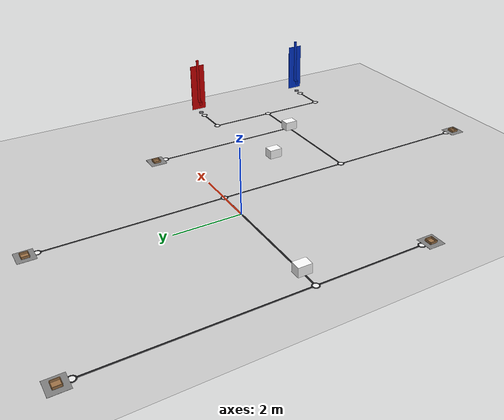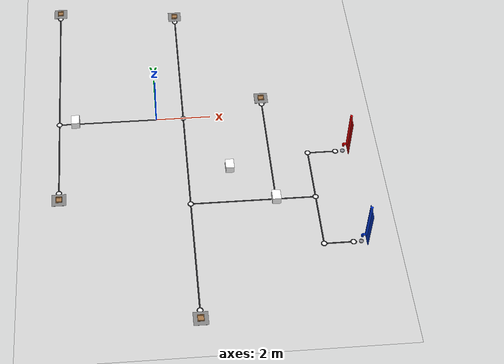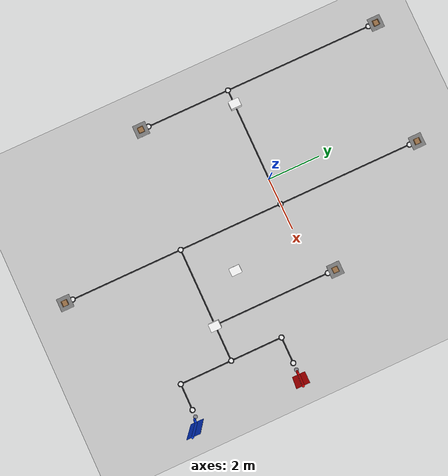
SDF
<sdf version="1.8">
 <world name="default">
  <physics name="2ms" type="ignored">
   <max_step_size>0.002</max_step_size>
   <real_time_factor>1.0</real_time_factor>
  </physics>
  <plugin filename="gz-sim-physics-system" name="gz::sim::systems::Physics"/>
  <plugin filename="gz-sim-user-commands-system" name="gz::sim::systems::UserCommands"/>
  <plugin filename="gz-sim-scene-broadcaster-system" name="gz::sim::systems::SceneBroadcaster"/>
  <plugin filename="gz-sim-sensors-system" name="gz::sim::systems::Sensors">
   <render_engine>ogre2</render_engine>
  </plugin>
  <plugin filename="gz-sim-imu-system" name="gz::sim::systems::Imu"/>
  <plugin filename="gz-sim-contact-system" name="gz::sim::systems::Contact"/>
  <plugin filename="libgz_link_attacher.so" name="gz_link_attacher::LinkAttacher">
   <robot_model_name>myagv_mecharm</robot_model_name>
   <gripper_link_name>gripper_left1</gripper_link_name>
  </plugin>
  <scene><grid>false</grid><shadows>false</shadows></scene>
  <light type="directional" name="sun">
   <cast_shadows>false</cast_shadows>
   <pose>0 0 18 0 0 0</pose>
   <diffuse>0.5 0.5 0.5 1</diffuse>
   <specular>0.2 0.2 0.2 1</specular>
   <attenuation>
    <range>80</range>
    <constant>0.01</constant>
    <linear>0.01</linear>
    <quadratic>0.001</quadratic>
   </attenuation>
   <direction>0.1 0.1 -1</direction>
  </light>
  <model name="ground_plane">
   <static>true</static>
   <link name="link">
    <collision name="collision"><geometry><plane><normal>0 0 1</normal></plane></geometry></collision>
    <visual name="visual">
     <geometry><plane><normal>0 0 1</normal><size>100 100</size></plane></geometry>
     <material>
      <ambient>0.8 0.8 0.8 1</ambient>
      <diffuse>0.8 0.8 0.8 1</diffuse>
      <specular>0.8 0.8 0.8 1</specular>
     </material>
    </visual>
   </link>
  </model>
  <model name="guide_tape">
   <static>true</static>
   <link name="link">
    <visual name="tape_0">
     <pose>5.905 -2.000 0.001 0 0 3.1416</pose>
     <geometry><box><size>1.011 0.05 0.002</size></box></geometry>
     <material><ambient>0.12 0.12 0.13 1</ambient><diffuse>0.12 0.12 0.13 1</diffuse></material>
    </visual>
    <visual name="tape_1">
     <pose>5.400 -3.000 0.001 0 0 -1.5708</pose>
     <geometry><box><size>2.000 0.05 0.002</size></box></geometry>
     <material><ambient>0.12 0.12 0.13 1</ambient><diffuse>0.12 0.12 0.13 1</diffuse></material>
    </visual>
    <visual name="tape_2">
     <pose>5.400 -5.000 0.001 0 0 -1.5708</pose>
     <geometry><box><size>2.000 0.05 0.002</size></box></geometry>
     <material><ambient>0.12 0.12 0.13 1</ambient><diffuse>0.12 0.12 0.13 1</diffuse></material>
    </visual>
    <visual name="tape_3">
     <pose>5.905 -6.000 0.001 0 0 0.0000</pose>
     <geometry><box><size>1.011 0.05 0.002</size></box></geometry>
     <material><ambient>0.12 0.12 0.13 1</ambient><diffuse>0.12 0.12 0.13 1</diffuse></material>
    </visual>
    <visual name="tape_4">
     <pose>4.700 -4.000 0.001 0 0 3.1416</pose>
     <geometry><box><size>1.400 0.05 0.002</size></box></geometry>
     <material><ambient>0.12 0.12 0.13 1</ambient><diffuse>0.12 0.12 0.13 1</diffuse></material>
    </visual>
    <visual name="tape_5">
     <pose>4.000 -1.750 0.001 0 0 1.5708</pose>
     <geometry><box><size>4.500 0.05 0.002</size></box></geometry>
     <material><ambient>0.12 0.12 0.13 1</ambient><diffuse>0.12 0.12 0.13 1</diffuse></material>
    </visual>
    <visual name="tape_6">
     <pose>2.500 -4.000 0.001 0 0 3.1416</pose>
     <geometry><box><size>3.000 0.05 0.002</size></box></geometry>
     <material><ambient>0.12 0.12 0.13 1</ambient><diffuse>0.12 0.12 0.13 1</diffuse></material>
    </visual>
    <visual name="tape_7">
     <pose>1.000 -6.150 0.001 0 0 -1.5708</pose>
     <geometry><box><size>4.300 0.05 0.002</size></box></geometry>
     <material><ambient>0.12 0.12 0.13 1</ambient><diffuse>0.12 0.12 0.13 1</diffuse></material>
    </visual>
    <visual name="tape_8">
     <pose>1.000 -2.000 0.001 0 0 1.5708</pose>
     <geometry><box><size>4.000 0.05 0.002</size></box></geometry>
     <material><ambient>0.12 0.12 0.13 1</ambient><diffuse>0.12 0.12 0.13 1</diffuse></material>
    </visual>
    <visual name="tape_9">
     <pose>1.000 2.600 0.001 0 0 1.5708</pose>
     <geometry><box><size>5.200 0.05 0.002</size></box></geometry>
     <material><ambient>0.12 0.12 0.13 1</ambient><diffuse>0.12 0.12 0.13 1</diffuse></material>
    </visual>
    <visual name="tape_10">
     <pose>-1.300 0.000 0.001 0 0 3.1416</pose>
     <geometry><box><size>4.600 0.05 0.002</size></box></geometry>
     <material><ambient>0.12 0.12 0.13 1</ambient><diffuse>0.12 0.12 0.13 1</diffuse></material>
    </visual>
    <visual name="tape_11">
     <pose>-3.600 2.850 0.001 0 0 1.5708</pose>
     <geometry><box><size>5.700 0.05 0.002</size></box></geometry>
     <material><ambient>0.12 0.12 0.13 1</ambient><diffuse>0.12 0.12 0.13 1</diffuse></material>
    </visual>
    <visual name="tape_12">
     <pose>-3.600 -1.600 0.001 0 0 -1.5708</pose>
     <geometry><box><size>3.200 0.05 0.002</size></box></geometry>
     <material><ambient>0.12 0.12 0.13 1</ambient><diffuse>0.12 0.12 0.13 1</diffuse></material>
    </visual>
    <visual name="red_dispenser_ring">
     <pose>6.411 -2.0 0.0015 0 0 0</pose>
     <geometry><cylinder><radius>0.11</radius><length>0.003</length></cylinder></geometry>
     <material><ambient>0.12 0.12 0.13 1</ambient><diffuse>0.12 0.12 0.13 1</diffuse></material>
    </visual>
    <visual name="red_dispenser_dot">
     <pose>6.411 -2.0 0.002 0 0 0</pose>
     <geometry><cylinder><radius>0.075</radius><length>0.004</length></cylinder></geometry>
     <material><ambient>0.95 0.95 0.95 1</ambient><diffuse>0.95 0.95 0.95 1</diffuse></material>
    </visual>
    <visual name="blue_dispenser_ring">
     <pose>6.411 -6.0 0.0015 0 0 0</pose>
     <geometry><cylinder><radius>0.11</radius><length>0.003</length></cylinder></geometry>
     <material><ambient>0.12 0.12 0.13 1</ambient><diffuse>0.12 0.12 0.13 1</diffuse></material>
    </visual>
    <visual name="blue_dispenser_dot">
     <pose>6.411 -6.0 0.002 0 0 0</pose>
     <geometry><cylinder><radius>0.075</radius><length>0.004</length></cylinder></geometry>
     <material><ambient>0.95 0.95 0.95 1</ambient><diffuse>0.95 0.95 0.95 1</diffuse></material>
    </visual>
    <visual name="red_turn_ring">
     <pose>5.4 -2.0 0.0015 0 0 0</pose>
     <geometry><cylinder><radius>0.11</radius><length>0.003</length></cylinder></geometry>
     <material><ambient>0.12 0.12 0.13 1</ambient><diffuse>0.12 0.12 0.13 1</diffuse></material>
    </visual>
    <visual name="red_turn_dot">
     <pose>5.4 -2.0 0.002 0 0 0</pose>
     <geometry><cylinder><radius>0.075</radius><length>0.004</length></cylinder></geometry>
     <material><ambient>0.95 0.95 0.95 1</ambient><diffuse>0.95 0.95 0.95 1</diffuse></material>
    </visual>
    <visual name="dispensers_ring">
     <pose>5.4 -4.0 0.0015 0 0 0</pose>
     <geometry><cylinder><radius>0.11</radius><length>0.003</length></cylinder></geometry>
     <material><ambient>0.12 0.12 0.13 1</ambient><diffuse>0.12 0.12 0.13 1</diffuse></material>
    </visual>
    <visual name="dispensers_dot">
     <pose>5.4 -4.0 0.002 0 0 0</pose>
     <geometry><cylinder><radius>0.075</radius><length>0.004</length></cylinder></geometry>
     <material><ambient>0.95 0.95 0.95 1</ambient><diffuse>0.95 0.95 0.95 1</diffuse></material>
    </visual>
    <visual name="blue_turn_ring">
     <pose>5.4 -6.0 0.0015 0 0 0</pose>
     <geometry><cylinder><radius>0.11</radius><length>0.003</length></cylinder></geometry>
     <material><ambient>0.12 0.12 0.13 1</ambient><diffuse>0.12 0.12 0.13 1</diffuse></material>
    </visual>
    <visual name="blue_turn_dot">
     <pose>5.4 -6.0 0.002 0 0 0</pose>
     <geometry><cylinder><radius>0.075</radius><length>0.004</length></cylinder></geometry>
     <material><ambient>0.95 0.95 0.95 1</ambient><diffuse>0.95 0.95 0.95 1</diffuse></material>
    </visual>
    <visual name="east_ring">
     <pose>4.0 -4.0 0.0015 0 0 0</pose>
     <geometry><cylinder><radius>0.11</radius><length>0.003</length></cylinder></geometry>
     <material><ambient>0.12 0.12 0.13 1</ambient><diffuse>0.12 0.12 0.13 1</diffuse></material>
    </visual>
    <visual name="east_dot">
     <pose>4.0 -4.0 0.002 0 0 0</pose>
     <geometry><cylinder><radius>0.075</radius><length>0.004</length></cylinder></geometry>
     <material><ambient>0.95 0.95 0.95 1</ambient><diffuse>0.95 0.95 0.95 1</diffuse></material>
    </visual>
    <visual name="station_5_ring">
     <pose>4.0 0.5 0.0015 0 0 0</pose>
     <geometry><cylinder><radius>0.11</radius><length>0.003</length></cylinder></geometry>
     <material><ambient>0.12 0.12 0.13 1</ambient><diffuse>0.12 0.12 0.13 1</diffuse></material>
    </visual>
    <visual name="station_5_dot">
     <pose>4.0 0.5 0.002 0 0 0</pose>
     <geometry><cylinder><radius>0.075</radius><length>0.004</length></cylinder></geometry>
     <material><ambient>0.95 0.95 0.95 1</ambient><diffuse>0.95 0.95 0.95 1</diffuse></material>
    </visual>
    <visual name="south_ring">
     <pose>1.0 -4.0 0.0015 0 0 0</pose>
     <geometry><cylinder><radius>0.11</radius><length>0.003</length></cylinder></geometry>
     <material><ambient>0.12 0.12 0.13 1</ambient><diffuse>0.12 0.12 0.13 1</diffuse></material>
    </visual>
    <visual name="south_dot">
     <pose>1.0 -4.0 0.002 0 0 0</pose>
     <geometry><cylinder><radius>0.075</radius><length>0.004</length></cylinder></geometry>
     <material><ambient>0.95 0.95 0.95 1</ambient><diffuse>0.95 0.95 0.95 1</diffuse></material>
    </visual>
    <visual name="station_3_ring">
     <pose>1.0 -8.3 0.0015 0 0 0</pose>
     <geometry><cylinder><radius>0.11</radius><length>0.003</length></cylinder></geometry>
     <material><ambient>0.12 0.12 0.13 1</ambient><diffuse>0.12 0.12 0.13 1</diffuse></material>
    </visual>
    <visual name="station_3_dot">
     <pose>1.0 -8.3 0.002 0 0 0</pose>
     <geometry><cylinder><radius>0.075</radius><length>0.004</length></cylinder></geometry>
     <material><ambient>0.95 0.95 0.95 1</ambient><diffuse>0.95 0.95 0.95 1</diffuse></material>
    </visual>
    <visual name="center_ring">
     <pose>1.0 0.0 0.0015 0 0 0</pose>
     <geometry><cylinder><radius>0.11</radius><length>0.003</length></cylinder></geometry>
     <material><ambient>0.12 0.12 0.13 1</ambient><diffuse>0.12 0.12 0.13 1</diffuse></material>
    </visual>
    <visual name="center_dot">
     <pose>1.0 0.0 0.002 0 0 0</pose>
     <geometry><cylinder><radius>0.075</radius><length>0.004</length></cylinder></geometry>
     <material><ambient>0.95 0.95 0.95 1</ambient><diffuse>0.95 0.95 0.95 1</diffuse></material>
    </visual>
    <visual name="station_4_ring">
     <pose>1.0 5.2 0.0015 0 0 0</pose>
     <geometry><cylinder><radius>0.11</radius><length>0.003</length></cylinder></geometry>
     <material><ambient>0.12 0.12 0.13 1</ambient><diffuse>0.12 0.12 0.13 1</diffuse></material>
    </visual>
    <visual name="station_4_dot">
     <pose>1.0 5.2 0.002 0 0 0</pose>
     <geometry><cylinder><radius>0.075</radius><length>0.004</length></cylinder></geometry>
     <material><ambient>0.95 0.95 0.95 1</ambient><diffuse>0.95 0.95 0.95 1</diffuse></material>
    </visual>
    <visual name="west_ring">
     <pose>-3.6 0.0 0.0015 0 0 0</pose>
     <geometry><cylinder><radius>0.11</radius><length>0.003</length></cylinder></geometry>
     <material><ambient>0.12 0.12 0.13 1</ambient><diffuse>0.12 0.12 0.13 1</diffuse></material>
    </visual>
    <visual name="west_dot">
     <pose>-3.6 0.0 0.002 0 0 0</pose>
     <geometry><cylinder><radius>0.075</radius><length>0.004</length></cylinder></geometry>
     <material><ambient>0.95 0.95 0.95 1</ambient><diffuse>0.95 0.95 0.95 1</diffuse></material>
    </visual>
    <visual name="station_1_ring">
     <pose>-3.6 5.7 0.0015 0 0 0</pose>
     <geometry><cylinder><radius>0.11</radius><length>0.003</length></cylinder></geometry>
     <material><ambient>0.12 0.12 0.13 1</ambient><diffuse>0.12 0.12 0.13 1</diffuse></material>
    </visual>
    <visual name="station_1_dot">
     <pose>-3.6 5.7 0.002 0 0 0</pose>
     <geometry><cylinder><radius>0.075</radius><length>0.004</length></cylinder></geometry>
     <material><ambient>0.95 0.95 0.95 1</ambient><diffuse>0.95 0.95 0.95 1</diffuse></material>
    </visual>
    <visual name="station_2_ring">
     <pose>-3.6 -3.2 0.0015 0 0 0</pose>
     <geometry><cylinder><radius>0.11</radius><length>0.003</length></cylinder></geometry>
     <material><ambient>0.12 0.12 0.13 1</ambient><diffuse>0.12 0.12 0.13 1</diffuse></material>
    </visual>
    <visual name="station_2_dot">
     <pose>-3.6 -3.2 0.002 0 0 0</pose>
     <geometry><cylinder><radius>0.075</radius><length>0.004</length></cylinder></geometry>
     <material><ambient>0.95 0.95 0.95 1</ambient><diffuse>0.95 0.95 0.95 1</diffuse></material>
    </visual>
   </link>
  </model>
  <model name="red_dispenser">
   <static>true</static>
   <pose>0 -2.0 0 0 0 0</pose>
   <link name="link">
    <visual name="plate">
     <pose>6.8410 0.0000 0.9000 0 0 0.0000</pose>
     <geometry><box><size>0.02 0.5 1.6</size></box></geometry>
     <material><ambient>0.8 0 0 1</ambient><diffuse>0.8 0 0 1</diffuse></material>
    </visual>
    <visual name="pipe">
     <pose>6.801 0.000 1.150 0.0 0.0 0</pose>
     <geometry><cylinder><radius>0.045</radius><length>1.5</length></cylinder></geometry>
     <material><ambient>0.8 0 0 1</ambient><diffuse>0.8 0 0 1</diffuse></material>
    </visual>
    <collision name="pipe_collision">
     <pose>6.801 0.000 1.150 0.0 0.0 0</pose>
     <geometry><cylinder><radius>0.045</radius><length>1.5</length></cylinder></geometry>
    </collision>
    <visual name="elbow">
     <pose>6.736 0.000 0.400 0.0 1.5708 0</pose>
     <geometry><cylinder><radius>0.045</radius><length>0.13</length></cylinder></geometry>
     <material><ambient>0.8 0 0 1</ambient><diffuse>0.8 0 0 1</diffuse></material>
    </visual>
    <collision name="elbow_collision">
     <pose>6.736 0.000 0.400 0.0 1.5708 0</pose>
     <geometry><cylinder><radius>0.045</radius><length>0.13</length></cylinder></geometry>
    </collision>
    <visual name="spout">
     <pose>6.671 0.000 0.350 0.0 0.0 0</pose>
     <geometry><cylinder><radius>0.045</radius><length>0.1</length></cylinder></geometry>
     <material><ambient>0.8 0 0 1</ambient><diffuse>0.8 0 0 1</diffuse></material>
    </visual>
    <collision name="spout_collision">
     <pose>6.671 0.000 0.350 0.0 0.0 0</pose>
     <geometry><cylinder><radius>0.045</radius><length>0.1</length></cylinder></geometry>
    </collision>
    <visual name="cup_floor">
     <pose>6.671 0.000 0.005 0.0 0.0 0</pose>
     <geometry><cylinder><radius>0.08</radius><length>0.01</length></cylinder></geometry>
     <material><ambient>0.55 0.55 0.58 1</ambient><diffuse>0.55 0.55 0.58 1</diffuse></material>
    </visual>
    <collision name="cup_floor_collision">
     <pose>6.671 0.000 0.005 0.0 0.0 0</pose>
     <geometry><cylinder><radius>0.08</radius><length>0.01</length></cylinder></geometry>
    </collision>
    <visual name="cup_wall_0">
     <pose>6.7460 0.0000 0.0225 0 0 0.0000</pose>
     <geometry><box><size>0.01 0.026 0.025</size></box></geometry>
     <material><ambient>0.55 0.55 0.58 1</ambient><diffuse>0.55 0.55 0.58 1</diffuse></material>
    </visual>
    <collision name="cup_wall_0_collision">
     <pose>6.7460 0.0000 0.0225 0 0 0.0000</pose>
     <geometry><box><size>0.01 0.026 0.025</size></box></geometry>
    </collision>
    <visual name="cup_wall_1">
     <pose>6.7423 0.0232 0.0225 0 0 0.3142</pose>
     <geometry><box><size>0.01 0.026 0.025</size></box></geometry>
     <material><ambient>0.55 0.55 0.58 1</ambient><diffuse>0.55 0.55 0.58 1</diffuse></material>
    </visual>
    <collision name="cup_wall_1_collision">
     <pose>6.7423 0.0232 0.0225 0 0 0.3142</pose>
     <geometry><box><size>0.01 0.026 0.025</size></box></geometry>
    </collision>
    <visual name="cup_wall_2">
     <pose>6.7317 0.0441 0.0225 0 0 0.6283</pose>
     <geometry><box><size>0.01 0.026 0.025</size></box></geometry>
     <material><ambient>0.55 0.55 0.58 1</ambient><diffuse>0.55 0.55 0.58 1</diffuse></material>
    </visual>
    <collision name="cup_wall_2_collision">
     <pose>6.7317 0.0441 0.0225 0 0 0.6283</pose>
     <geometry><box><size>0.01 0.026 0.025</size></box></geometry>
    </collision>
    <visual name="cup_wall_3">
     <pose>6.7151 0.0607 0.0225 0 0 0.9425</pose>
     <geometry><box><size>0.01 0.026 0.025</size></box></geometry>
     <material><ambient>0.55 0.55 0.58 1</ambient><diffuse>0.55 0.55 0.58 1</diffuse></material>
    </visual>
    <collision name="cup_wall_3_collision">
     <pose>6.7151 0.0607 0.0225 0 0 0.9425</pose>
     <geometry><box><size>0.01 0.026 0.025</size></box></geometry>
    </collision>
    <visual name="cup_wall_4">
     <pose>6.6942 0.0713 0.0225 0 0 1.2566</pose>
     <geometry><box><size>0.01 0.026 0.025</size></box></geometry>
     <material><ambient>0.55 0.55 0.58 1</ambient><diffuse>0.55 0.55 0.58 1</diffuse></material>
    </visual>
    <collision name="cup_wall_4_collision">
     <pose>6.6942 0.0713 0.0225 0 0 1.2566</pose>
     <geometry><box><size>0.01 0.026 0.025</size></box></geometry>
    </collision>
    <visual name="cup_wall_5">
     <pose>6.6710 0.0750 0.0225 0 0 1.5708</pose>
     <geometry><box><size>0.01 0.026 0.025</size></box></geometry>
     <material><ambient>0.55 0.55 0.58 1</ambient><diffuse>0.55 0.55 0.58 1</diffuse></material>
    </visual>
    <collision name="cup_wall_5_collision">
     <pose>6.6710 0.0750 0.0225 0 0 1.5708</pose>
     <geometry><box><size>0.01 0.026 0.025</size></box></geometry>
    </collision>
    <visual name="cup_wall_6">
     <pose>6.6478 0.0713 0.0225 0 0 1.8850</pose>
     <geometry><box><size>0.01 0.026 0.025</size></box></geometry>
     <material><ambient>0.55 0.55 0.58 1</ambient><diffuse>0.55 0.55 0.58 1</diffuse></material>
    </visual>
    <collision name="cup_wall_6_collision">
     <pose>6.6478 0.0713 0.0225 0 0 1.8850</pose>
     <geometry><box><size>0.01 0.026 0.025</size></box></geometry>
    </collision>
    <visual name="cup_wall_7">
     <pose>6.6269 0.0607 0.0225 0 0 2.1991</pose>
     <geometry><box><size>0.01 0.026 0.025</size></box></geometry>
     <material><ambient>0.55 0.55 0.58 1</ambient><diffuse>0.55 0.55 0.58 1</diffuse></material>
    </visual>
    <collision name="cup_wall_7_collision">
     <pose>6.6269 0.0607 0.0225 0 0 2.1991</pose>
     <geometry><box><size>0.01 0.026 0.025</size></box></geometry>
    </collision>
    <visual name="cup_wall_8">
     <pose>6.6103 0.0441 0.0225 0 0 2.5133</pose>
     <geometry><box><size>0.01 0.026 0.025</size></box></geometry>
     <material><ambient>0.55 0.55 0.58 1</ambient><diffuse>0.55 0.55 0.58 1</diffuse></material>
    </visual>
    <collision name="cup_wall_8_collision">
     <pose>6.6103 0.0441 0.0225 0 0 2.5133</pose>
     <geometry><box><size>0.01 0.026 0.025</size></box></geometry>
    </collision>
    <visual name="cup_wall_9">
     <pose>6.5997 0.0232 0.0225 0 0 2.8274</pose>
     <geometry><box><size>0.01 0.026 0.025</size></box></geometry>
     <material><ambient>0.55 0.55 0.58 1</ambient><diffuse>0.55 0.55 0.58 1</diffuse></material>
    </visual>
    <collision name="cup_wall_9_collision">
     <pose>6.5997 0.0232 0.0225 0 0 2.8274</pose>
     <geometry><box><size>0.01 0.026 0.025</size></box></geometry>
    </collision>
    <visual name="cup_wall_10">
     <pose>6.5960 0.0000 0.0225 0 0 3.1416</pose>
     <geometry><box><size>0.01 0.026 0.025</size></box></geometry>
     <material><ambient>0.55 0.55 0.58 1</ambient><diffuse>0.55 0.55 0.58 1</diffuse></material>
    </visual>
    <collision name="cup_wall_10_collision">
     <pose>6.5960 0.0000 0.0225 0 0 3.1416</pose>
     <geometry><box><size>0.01 0.026 0.025</size></box></geometry>
    </collision>
    <visual name="cup_wall_11">
     <pose>6.5997 -0.0232 0.0225 0 0 3.4558</pose>
     <geometry><box><size>0.01 0.026 0.025</size></box></geometry>
     <material><ambient>0.55 0.55 0.58 1</ambient><diffuse>0.55 0.55 0.58 1</diffuse></material>
    </visual>
    <collision name="cup_wall_11_collision">
     <pose>6.5997 -0.0232 0.0225 0 0 3.4558</pose>
     <geometry><box><size>0.01 0.026 0.025</size></box></geometry>
    </collision>
    <visual name="cup_wall_12">
     <pose>6.6103 -0.0441 0.0225 0 0 3.7699</pose>
     <geometry><box><size>0.01 0.026 0.025</size></box></geometry>
     <material><ambient>0.55 0.55 0.58 1</ambient><diffuse>0.55 0.55 0.58 1</diffuse></material>
    </visual>
    <collision name="cup_wall_12_collision">
     <pose>6.6103 -0.0441 0.0225 0 0 3.7699</pose>
     <geometry><box><size>0.01 0.026 0.025</size></box></geometry>
    </collision>
    <visual name="cup_wall_13">
     <pose>6.6269 -0.0607 0.0225 0 0 4.0841</pose>
     <geometry><box><size>0.01 0.026 0.025</size></box></geometry>
     <material><ambient>0.55 0.55 0.58 1</ambient><diffuse>0.55 0.55 0.58 1</diffuse></material>
    </visual>
    <collision name="cup_wall_13_collision">
     <pose>6.6269 -0.0607 0.0225 0 0 4.0841</pose>
     <geometry><box><size>0.01 0.026 0.025</size></box></geometry>
    </collision>
    <visual name="cup_wall_14">
     <pose>6.6478 -0.0713 0.0225 0 0 4.3982</pose>
     <geometry><box><size>0.01 0.026 0.025</size></box></geometry>
     <material><ambient>0.55 0.55 0.58 1</ambient><diffuse>0.55 0.55 0.58 1</diffuse></material>
    </visual>
    <collision name="cup_wall_14_collision">
     <pose>6.6478 -0.0713 0.0225 0 0 4.3982</pose>
     <geometry><box><size>0.01 0.026 0.025</size></box></geometry>
    </collision>
    <visual name="cup_wall_15">
     <pose>6.6710 -0.0750 0.0225 0 0 4.7124</pose>
     <geometry><box><size>0.01 0.026 0.025</size></box></geometry>
     <material><ambient>0.55 0.55 0.58 1</ambient><diffuse>0.55 0.55 0.58 1</diffuse></material>
    </visual>
    <collision name="cup_wall_15_collision">
     <pose>6.6710 -0.0750 0.0225 0 0 4.7124</pose>
     <geometry><box><size>0.01 0.026 0.025</size></box></geometry>
    </collision>
    <visual name="cup_wall_16">
     <pose>6.6942 -0.0713 0.0225 0 0 5.0265</pose>
     <geometry><box><size>0.01 0.026 0.025</size></box></geometry>
     <material><ambient>0.55 0.55 0.58 1</ambient><diffuse>0.55 0.55 0.58 1</diffuse></material>
    </visual>
    <collision name="cup_wall_16_collision">
     <pose>6.6942 -0.0713 0.0225 0 0 5.0265</pose>
     <geometry><box><size>0.01 0.026 0.025</size></box></geometry>
    </collision>
    <visual name="cup_wall_17">
     <pose>6.7151 -0.0607 0.0225 0 0 5.3407</pose>
     <geometry><box><size>0.01 0.026 0.025</size></box></geometry>
     <material><ambient>0.55 0.55 0.58 1</ambient><diffuse>0.55 0.55 0.58 1</diffuse></material>
    </visual>
    <collision name="cup_wall_17_collision">
     <pose>6.7151 -0.0607 0.0225 0 0 5.3407</pose>
     <geometry><box><size>0.01 0.026 0.025</size></box></geometry>
    </collision>
    <visual name="cup_wall_18">
     <pose>6.7317 -0.0441 0.0225 0 0 5.6549</pose>
     <geometry><box><size>0.01 0.026 0.025</size></box></geometry>
     <material><ambient>0.55 0.55 0.58 1</ambient><diffuse>0.55 0.55 0.58 1</diffuse></material>
    </visual>
    <collision name="cup_wall_18_collision">
     <pose>6.7317 -0.0441 0.0225 0 0 5.6549</pose>
     <geometry><box><size>0.01 0.026 0.025</size></box></geometry>
    </collision>
    <visual name="cup_wall_19">
     <pose>6.7423 -0.0232 0.0225 0 0 5.9690</pose>
     <geometry><box><size>0.01 0.026 0.025</size></box></geometry>
     <material><ambient>0.55 0.55 0.58 1</ambient><diffuse>0.55 0.55 0.58 1</diffuse></material>
    </visual>
    <collision name="cup_wall_19_collision">
     <pose>6.7423 -0.0232 0.0225 0 0 5.9690</pose>
     <geometry><box><size>0.01 0.026 0.025</size></box></geometry>
    </collision>
   </link>
  </model>
  <model name="blue_dispenser">
   <static>true</static>
   <pose>0 -6.0 0 0 0 0</pose>
   <link name="link">
    <visual name="plate">
     <pose>6.8410 0.0000 0.9000 0 0 0.0000</pose>
     <geometry><box><size>0.02 0.5 1.6</size></box></geometry>
     <material><ambient>0 0.2 0.8 1</ambient><diffuse>0 0.2 0.8 1</diffuse></material>
    </visual>
    <visual name="pipe">
     <pose>6.801 0.000 1.150 0.0 0.0 0</pose>
     <geometry><cylinder><radius>0.045</radius><length>1.5</length></cylinder></geometry>
     <material><ambient>0 0.2 0.8 1</ambient><diffuse>0 0.2 0.8 1</diffuse></material>
    </visual>
    <collision name="pipe_collision">
     <pose>6.801 0.000 1.150 0.0 0.0 0</pose>
     <geometry><cylinder><radius>0.045</radius><length>1.5</length></cylinder></geometry>
    </collision>
    <visual name="elbow">
     <pose>6.736 0.000 0.400 0.0 1.5708 0</pose>
     <geometry><cylinder><radius>0.045</radius><length>0.13</length></cylinder></geometry>
     <material><ambient>0 0.2 0.8 1</ambient><diffuse>0 0.2 0.8 1</diffuse></material>
    </visual>
    <collision name="elbow_collision">
     <pose>6.736 0.000 0.400 0.0 1.5708 0</pose>
     <geometry><cylinder><radius>0.045</radius><length>0.13</length></cylinder></geometry>
    </collision>
    <visual name="spout">
     <pose>6.671 0.000 0.350 0.0 0.0 0</pose>
     <geometry><cylinder><radius>0.045</radius><length>0.1</length></cylinder></geometry>
     <material><ambient>0 0.2 0.8 1</ambient><diffuse>0 0.2 0.8 1</diffuse></material>
    </visual>
    <collision name="spout_collision">
     <pose>6.671 0.000 0.350 0.0 0.0 0</pose>
     <geometry><cylinder><radius>0.045</radius><length>0.1</length></cylinder></geometry>
    </collision>
    <visual name="cup_floor">
     <pose>6.671 0.000 0.005 0.0 0.0 0</pose>
     <geometry><cylinder><radius>0.08</radius><length>0.01</length></cylinder></geometry>
     <material><ambient>0.55 0.55 0.58 1</ambient><diffuse>0.55 0.55 0.58 1</diffuse></material>
    </visual>
    <collision name="cup_floor_collision">
     <pose>6.671 0.000 0.005 0.0 0.0 0</pose>
     <geometry><cylinder><radius>0.08</radius><length>0.01</length></cylinder></geometry>
    </collision>
    <visual name="cup_wall_0">
     <pose>6.7460 0.0000 0.0225 0 0 0.0000</pose>
     <geometry><box><size>0.01 0.026 0.025</size></box></geometry>
     <material><ambient>0.55 0.55 0.58 1</ambient><diffuse>0.55 0.55 0.58 1</diffuse></material>
    </visual>
    <collision name="cup_wall_0_collision">
     <pose>6.7460 0.0000 0.0225 0 0 0.0000</pose>
     <geometry><box><size>0.01 0.026 0.025</size></box></geometry>
    </collision>
    <visual name="cup_wall_1">
     <pose>6.7423 0.0232 0.0225 0 0 0.3142</pose>
     <geometry><box><size>0.01 0.026 0.025</size></box></geometry>
     <material><ambient>0.55 0.55 0.58 1</ambient><diffuse>0.55 0.55 0.58 1</diffuse></material>
    </visual>
    <collision name="cup_wall_1_collision">
     <pose>6.7423 0.0232 0.0225 0 0 0.3142</pose>
     <geometry><box><size>0.01 0.026 0.025</size></box></geometry>
    </collision>
    <visual name="cup_wall_2">
     <pose>6.7317 0.0441 0.0225 0 0 0.6283</pose>
     <geometry><box><size>0.01 0.026 0.025</size></box></geometry>
     <material><ambient>0.55 0.55 0.58 1</ambient><diffuse>0.55 0.55 0.58 1</diffuse></material>
    </visual>
    <collision name="cup_wall_2_collision">
     <pose>6.7317 0.0441 0.0225 0 0 0.6283</pose>
     <geometry><box><size>0.01 0.026 0.025</size></box></geometry>
    </collision>
    <visual name="cup_wall_3">
     <pose>6.7151 0.0607 0.0225 0 0 0.9425</pose>
     <geometry><box><size>0.01 0.026 0.025</size></box></geometry>
     <material><ambient>0.55 0.55 0.58 1</ambient><diffuse>0.55 0.55 0.58 1</diffuse></material>
    </visual>
    <collision name="cup_wall_3_collision">
     <pose>6.7151 0.0607 0.0225 0 0 0.9425</pose>
     <geometry><box><size>0.01 0.026 0.025</size></box></geometry>
    </collision>
    <visual name="cup_wall_4">
     <pose>6.6942 0.0713 0.0225 0 0 1.2566</pose>
     <geometry><box><size>0.01 0.026 0.025</size></box></geometry>
     <material><ambient>0.55 0.55 0.58 1</ambient><diffuse>0.55 0.55 0.58 1</diffuse></material>
    </visual>
    <collision name="cup_wall_4_collision">
     <pose>6.6942 0.0713 0.0225 0 0 1.2566</pose>
     <geometry><box><size>0.01 0.026 0.025</size></box></geometry>
    </collision>
    <visual name="cup_wall_5">
     <pose>6.6710 0.0750 0.0225 0 0 1.5708</pose>
     <geometry><box><size>0.01 0.026 0.025</size></box></geometry>
     <material><ambient>0.55 0.55 0.58 1</ambient><diffuse>0.55 0.55 0.58 1</diffuse></material>
    </visual>
    <collision name="cup_wall_5_collision">
     <pose>6.6710 0.0750 0.0225 0 0 1.5708</pose>
     <geometry><box><size>0.01 0.026 0.025</size></box></geometry>
    </collision>
    <visual name="cup_wall_6">
     <pose>6.6478 0.0713 0.0225 0 0 1.8850</pose>
     <geometry><box><size>0.01 0.026 0.025</size></box></geometry>
     <material><ambient>0.55 0.55 0.58 1</ambient><diffuse>0.55 0.55 0.58 1</diffuse></material>
    </visual>
    <collision name="cup_wall_6_collision">
     <pose>6.6478 0.0713 0.0225 0 0 1.8850</pose>
     <geometry><box><size>0.01 0.026 0.025</size></box></geometry>
    </collision>
    <visual name="cup_wall_7">
     <pose>6.6269 0.0607 0.0225 0 0 2.1991</pose>
     <geometry><box><size>0.01 0.026 0.025</size></box></geometry>
     <material><ambient>0.55 0.55 0.58 1</ambient><diffuse>0.55 0.55 0.58 1</diffuse></material>
    </visual>
    <collision name="cup_wall_7_collision">
     <pose>6.6269 0.0607 0.0225 0 0 2.1991</pose>
     <geometry><box><size>0.01 0.026 0.025</size></box></geometry>
    </collision>
    <visual name="cup_wall_8">
     <pose>6.6103 0.0441 0.0225 0 0 2.5133</pose>
     <geometry><box><size>0.01 0.026 0.025</size></box></geometry>
     <material><ambient>0.55 0.55 0.58 1</ambient><diffuse>0.55 0.55 0.58 1</diffuse></material>
    </visual>
    <collision name="cup_wall_8_collision">
     <pose>6.6103 0.0441 0.0225 0 0 2.5133</pose>
     <geometry><box><size>0.01 0.026 0.025</size></box></geometry>
    </collision>
    <visual name="cup_wall_9">
     <pose>6.5997 0.0232 0.0225 0 0 2.8274</pose>
     <geometry><box><size>0.01 0.026 0.025</size></box></geometry>
     <material><ambient>0.55 0.55 0.58 1</ambient><diffuse>0.55 0.55 0.58 1</diffuse></material>
    </visual>
    <collision name="cup_wall_9_collision">
     <pose>6.5997 0.0232 0.0225 0 0 2.8274</pose>
     <geometry><box><size>0.01 0.026 0.025</size></box></geometry>
    </collision>
    <visual name="cup_wall_10">
     <pose>6.5960 0.0000 0.0225 0 0 3.1416</pose>
     <geometry><box><size>0.01 0.026 0.025</size></box></geometry>
     <material><ambient>0.55 0.55 0.58 1</ambient><diffuse>0.55 0.55 0.58 1</diffuse></material>
    </visual>
    <collision name="cup_wall_10_collision">
     <pose>6.5960 0.0000 0.0225 0 0 3.1416</pose>
     <geometry><box><size>0.01 0.026 0.025</size></box></geometry>
    </collision>
    <visual name="cup_wall_11">
     <pose>6.5997 -0.0232 0.0225 0 0 3.4558</pose>
     <geometry><box><size>0.01 0.026 0.025</size></box></geometry>
     <material><ambient>0.55 0.55 0.58 1</ambient><diffuse>0.55 0.55 0.58 1</diffuse></material>
    </visual>
    <collision name="cup_wall_11_collision">
     <pose>6.5997 -0.0232 0.0225 0 0 3.4558</pose>
     <geometry><box><size>0.01 0.026 0.025</size></box></geometry>
    </collision>
    <visual name="cup_wall_12">
     <pose>6.6103 -0.0441 0.0225 0 0 3.7699</pose>
     <geometry><box><size>0.01 0.026 0.025</size></box></geometry>
     <material><ambient>0.55 0.55 0.58 1</ambient><diffuse>0.55 0.55 0.58 1</diffuse></material>
    </visual>
    <collision name="cup_wall_12_collision">
     <pose>6.6103 -0.0441 0.0225 0 0 3.7699</pose>
     <geometry><box><size>0.01 0.026 0.025</size></box></geometry>
    </collision>
    <visual name="cup_wall_13">
     <pose>6.6269 -0.0607 0.0225 0 0 4.0841</pose>
     <geometry><box><size>0.01 0.026 0.025</size></box></geometry>
     <material><ambient>0.55 0.55 0.58 1</ambient><diffuse>0.55 0.55 0.58 1</diffuse></material>
    </visual>
    <collision name="cup_wall_13_collision">
     <pose>6.6269 -0.0607 0.0225 0 0 4.0841</pose>
     <geometry><box><size>0.01 0.026 0.025</size></box></geometry>
    </collision>
    <visual name="cup_wall_14">
     <pose>6.6478 -0.0713 0.0225 0 0 4.3982</pose>
     <geometry><box><size>0.01 0.026 0.025</size></box></geometry>
     <material><ambient>0.55 0.55 0.58 1</ambient><diffuse>0.55 0.55 0.58 1</diffuse></material>
    </visual>
    <collision name="cup_wall_14_collision">
     <pose>6.6478 -0.0713 0.0225 0 0 4.3982</pose>
     <geometry><box><size>0.01 0.026 0.025</size></box></geometry>
    </collision>
    <visual name="cup_wall_15">
     <pose>6.6710 -0.0750 0.0225 0 0 4.7124</pose>
     <geometry><box><size>0.01 0.026 0.025</size></box></geometry>
     <material><ambient>0.55 0.55 0.58 1</ambient><diffuse>0.55 0.55 0.58 1</diffuse></material>
    </visual>
    <collision name="cup_wall_15_collision">
     <pose>6.6710 -0.0750 0.0225 0 0 4.7124</pose>
     <geometry><box><size>0.01 0.026 0.025</size></box></geometry>
    </collision>
    <visual name="cup_wall_16">
     <pose>6.6942 -0.0713 0.0225 0 0 5.0265</pose>
     <geometry><box><size>0.01 0.026 0.025</size></box></geometry>
     <material><ambient>0.55 0.55 0.58 1</ambient><diffuse>0.55 0.55 0.58 1</diffuse></material>
    </visual>
    <collision name="cup_wall_16_collision">
     <pose>6.6942 -0.0713 0.0225 0 0 5.0265</pose>
     <geometry><box><size>0.01 0.026 0.025</size></box></geometry>
    </collision>
    <visual name="cup_wall_17">
     <pose>6.7151 -0.0607 0.0225 0 0 5.3407</pose>
     <geometry><box><size>0.01 0.026 0.025</size></box></geometry>
     <material><ambient>0.55 0.55 0.58 1</ambient><diffuse>0.55 0.55 0.58 1</diffuse></material>
    </visual>
    <collision name="cup_wall_17_collision">
     <pose>6.7151 -0.0607 0.0225 0 0 5.3407</pose>
     <geometry><box><size>0.01 0.026 0.025</size></box></geometry>
    </collision>
    <visual name="cup_wall_18">
     <pose>6.7317 -0.0441 0.0225 0 0 5.6549</pose>
     <geometry><box><size>0.01 0.026 0.025</size></box></geometry>
     <material><ambient>0.55 0.55 0.58 1</ambient><diffuse>0.55 0.55 0.58 1</diffuse></material>
    </visual>
    <collision name="cup_wall_18_collision">
     <pose>6.7317 -0.0441 0.0225 0 0 5.6549</pose>
     <geometry><box><size>0.01 0.026 0.025</size></box></geometry>
    </collision>
    <visual name="cup_wall_19">
     <pose>6.7423 -0.0232 0.0225 0 0 5.9690</pose>
     <geometry><box><size>0.01 0.026 0.025</size></box></geometry>
     <material><ambient>0.55 0.55 0.58 1</ambient><diffuse>0.55 0.55 0.58 1</diffuse></material>
    </visual>
    <collision name="cup_wall_19_collision">
     <pose>6.7423 -0.0232 0.0225 0 0 5.9690</pose>
     <geometry><box><size>0.01 0.026 0.025</size></box></geometry>
    </collision>
   </link>
  </model>
  <model name="delivery_1">
   <static>true</static>
   <pose>-3.6 6.0 0 0 0 0</pose>
   <link name="link">
    <visual name="mat">
     <pose>0.0000 0.0000 0.0030 0 0 0.0000</pose>
     <geometry><box><size>0.5 0.5 0.006</size></box></geometry>
     <material><ambient>0.5 0.5 0.5 1</ambient><diffuse>0.5 0.5 0.5 1</diffuse></material>
    </visual>
    <visual name="box_floor">
     <pose>0.0000 0.0000 0.0090 0 0 0.0000</pose>
     <geometry><box><size>0.22 0.22 0.006</size></box></geometry>
     <material><ambient>0.62 0.45 0.28 1</ambient><diffuse>0.62 0.45 0.28 1</diffuse></material>
    </visual>
    <collision name="box_floor_collision">
     <pose>0.0000 0.0000 0.0090 0 0 0.0000</pose>
     <geometry><box><size>0.22 0.22 0.006</size></box></geometry>
    </collision>
    <visual name="box_north">
     <pose>0.0000 0.1050 0.0420 0 0 0.0000</pose>
     <geometry><box><size>0.22 0.01 0.06</size></box></geometry>
     <material><ambient>0.62 0.45 0.28 1</ambient><diffuse>0.62 0.45 0.28 1</diffuse></material>
    </visual>
    <collision name="box_north_collision">
     <pose>0.0000 0.1050 0.0420 0 0 0.0000</pose>
     <geometry><box><size>0.22 0.01 0.06</size></box></geometry>
    </collision>
    <visual name="box_south">
     <pose>0.0000 -0.1050 0.0420 0 0 0.0000</pose>
     <geometry><box><size>0.22 0.01 0.06</size></box></geometry>
     <material><ambient>0.62 0.45 0.28 1</ambient><diffuse>0.62 0.45 0.28 1</diffuse></material>
    </visual>
    <collision name="box_south_collision">
     <pose>0.0000 -0.1050 0.0420 0 0 0.0000</pose>
     <geometry><box><size>0.22 0.01 0.06</size></box></geometry>
    </collision>
    <visual name="box_east">
     <pose>0.1050 0.0000 0.0420 0 0 0.0000</pose>
     <geometry><box><size>0.01 0.2 0.06</size></box></geometry>
     <material><ambient>0.62 0.45 0.28 1</ambient><diffuse>0.62 0.45 0.28 1</diffuse></material>
    </visual>
    <collision name="box_east_collision">
     <pose>0.1050 0.0000 0.0420 0 0 0.0000</pose>
     <geometry><box><size>0.01 0.2 0.06</size></box></geometry>
    </collision>
    <visual name="box_west">
     <pose>-0.1050 0.0000 0.0420 0 0 0.0000</pose>
     <geometry><box><size>0.01 0.2 0.06</size></box></geometry>
     <material><ambient>0.62 0.45 0.28 1</ambient><diffuse>0.62 0.45 0.28 1</diffuse></material>
    </visual>
    <collision name="box_west_collision">
     <pose>-0.1050 0.0000 0.0420 0 0 0.0000</pose>
     <geometry><box><size>0.01 0.2 0.06</size></box></geometry>
    </collision>
   </link>
  </model>
  <model name="delivery_2">
   <static>true</static>
   <pose>-3.6 -3.5 0 0 0 0</pose>
   <link name="link">
    <visual name="mat">
     <pose>0.0000 0.0000 0.0030 0 0 0.0000</pose>
     <geometry><box><size>0.5 0.5 0.006</size></box></geometry>
     <material><ambient>0.5 0.5 0.5 1</ambient><diffuse>0.5 0.5 0.5 1</diffuse></material>
    </visual>
    <visual name="box_floor">
     <pose>0.0000 0.0000 0.0090 0 0 0.0000</pose>
     <geometry><box><size>0.22 0.22 0.006</size></box></geometry>
     <material><ambient>0.62 0.45 0.28 1</ambient><diffuse>0.62 0.45 0.28 1</diffuse></material>
    </visual>
    <collision name="box_floor_collision">
     <pose>0.0000 0.0000 0.0090 0 0 0.0000</pose>
     <geometry><box><size>0.22 0.22 0.006</size></box></geometry>
    </collision>
    <visual name="box_north">
     <pose>0.0000 0.1050 0.0420 0 0 0.0000</pose>
     <geometry><box><size>0.22 0.01 0.06</size></box></geometry>
     <material><ambient>0.62 0.45 0.28 1</ambient><diffuse>0.62 0.45 0.28 1</diffuse></material>
    </visual>
    <collision name="box_north_collision">
     <pose>0.0000 0.1050 0.0420 0 0 0.0000</pose>
     <geometry><box><size>0.22 0.01 0.06</size></box></geometry>
    </collision>
    <visual name="box_south">
     <pose>0.0000 -0.1050 0.0420 0 0 0.0000</pose>
     <geometry><box><size>0.22 0.01 0.06</size></box></geometry>
     <material><ambient>0.62 0.45 0.28 1</ambient><diffuse>0.62 0.45 0.28 1</diffuse></material>
    </visual>
    <collision name="box_south_collision">
     <pose>0.0000 -0.1050 0.0420 0 0 0.0000</pose>
     <geometry><box><size>0.22 0.01 0.06</size></box></geometry>
    </collision>
    <visual name="box_east">
     <pose>0.1050 0.0000 0.0420 0 0 0.0000</pose>
     <geometry><box><size>0.01 0.2 0.06</size></box></geometry>
     <material><ambient>0.62 0.45 0.28 1</ambient><diffuse>0.62 0.45 0.28 1</diffuse></material>
    </visual>
    <collision name="box_east_collision">
     <pose>0.1050 0.0000 0.0420 0 0 0.0000</pose>
     <geometry><box><size>0.01 0.2 0.06</size></box></geometry>
    </collision>
    <visual name="box_west">
     <pose>-0.1050 0.0000 0.0420 0 0 0.0000</pose>
     <geometry><box><size>0.01 0.2 0.06</size></box></geometry>
     <material><ambient>0.62 0.45 0.28 1</ambient><diffuse>0.62 0.45 0.28 1</diffuse></material>
    </visual>
    <collision name="box_west_collision">
     <pose>-0.1050 0.0000 0.0420 0 0 0.0000</pose>
     <geometry><box><size>0.01 0.2 0.06</size></box></geometry>
    </collision>
   </link>
  </model>
  <model name="delivery_3">
   <static>true</static>
   <pose>1.0 -8.6 0 0 0 0</pose>
   <link name="link">
    <visual name="mat">
     <pose>0.0000 0.0000 0.0030 0 0 0.0000</pose>
     <geometry><box><size>0.5 0.5 0.006</size></box></geometry>
     <material><ambient>0.5 0.5 0.5 1</ambient><diffuse>0.5 0.5 0.5 1</diffuse></material>
    </visual>
    <visual name="box_floor">
     <pose>0.0000 0.0000 0.0090 0 0 0.0000</pose>
     <geometry><box><size>0.22 0.22 0.006</size></box></geometry>
     <material><ambient>0.62 0.45 0.28 1</ambient><diffuse>0.62 0.45 0.28 1</diffuse></material>
    </visual>
    <collision name="box_floor_collision">
     <pose>0.0000 0.0000 0.0090 0 0 0.0000</pose>
     <geometry><box><size>0.22 0.22 0.006</size></box></geometry>
    </collision>
    <visual name="box_north">
     <pose>0.0000 0.1050 0.0420 0 0 0.0000</pose>
     <geometry><box><size>0.22 0.01 0.06</size></box></geometry>
     <material><ambient>0.62 0.45 0.28 1</ambient><diffuse>0.62 0.45 0.28 1</diffuse></material>
    </visual>
    <collision name="box_north_collision">
     <pose>0.0000 0.1050 0.0420 0 0 0.0000</pose>
     <geometry><box><size>0.22 0.01 0.06</size></box></geometry>
    </collision>
    <visual name="box_south">
     <pose>0.0000 -0.1050 0.0420 0 0 0.0000</pose>
     <geometry><box><size>0.22 0.01 0.06</size></box></geometry>
     <material><ambient>0.62 0.45 0.28 1</ambient><diffuse>0.62 0.45 0.28 1</diffuse></material>
    </visual>
    <collision name="box_south_collision">
     <pose>0.0000 -0.1050 0.0420 0 0 0.0000</pose>
     <geometry><box><size>0.22 0.01 0.06</size></box></geometry>
    </collision>
    <visual name="box_east">
     <pose>0.1050 0.0000 0.0420 0 0 0.0000</pose>
     <geometry><box><size>0.01 0.2 0.06</size></box></geometry>
     <material><ambient>0.62 0.45 0.28 1</ambient><diffuse>0.62 0.45 0.28 1</diffuse></material>
    </visual>
    <collision name="box_east_collision">
     <pose>0.1050 0.0000 0.0420 0 0 0.0000</pose>
     <geometry><box><size>0.01 0.2 0.06</size></box></geometry>
    </collision>
    <visual name="box_west">
     <pose>-0.1050 0.0000 0.0420 0 0 0.0000</pose>
     <geometry><box><size>0.01 0.2 0.06</size></box></geometry>
     <material><ambient>0.62 0.45 0.28 1</ambient><diffuse>0.62 0.45 0.28 1</diffuse></material>
    </visual>
    <collision name="box_west_collision">
     <pose>-0.1050 0.0000 0.0420 0 0 0.0000</pose>
     <geometry><box><size>0.01 0.2 0.06</size></box></geometry>
    </collision>
   </link>
  </model>
  <model name="delivery_4">
   <static>true</static>
   <pose>1.0 5.5 0 0 0 0</pose>
   <link name="link">
    <visual name="mat">
     <pose>0.0000 0.0000 0.0030 0 0 0.0000</pose>
     <geometry><box><size>0.5 0.5 0.006</size></box></geometry>
     <material><ambient>0.5 0.5 0.5 1</ambient><diffuse>0.5 0.5 0.5 1</diffuse></material>
    </visual>
    <visual name="box_floor">
     <pose>0.0000 0.0000 0.0090 0 0 0.0000</pose>
     <geometry><box><size>0.22 0.22 0.006</size></box></geometry>
     <material><ambient>0.62 0.45 0.28 1</ambient><diffuse>0.62 0.45 0.28 1</diffuse></material>
    </visual>
    <collision name="box_floor_collision">
     <pose>0.0000 0.0000 0.0090 0 0 0.0000</pose>
     <geometry><box><size>0.22 0.22 0.006</size></box></geometry>
    </collision>
    <visual name="box_north">
     <pose>0.0000 0.1050 0.0420 0 0 0.0000</pose>
     <geometry><box><size>0.22 0.01 0.06</size></box></geometry>
     <material><ambient>0.62 0.45 0.28 1</ambient><diffuse>0.62 0.45 0.28 1</diffuse></material>
    </visual>
    <collision name="box_north_collision">
     <pose>0.0000 0.1050 0.0420 0 0 0.0000</pose>
     <geometry><box><size>0.22 0.01 0.06</size></box></geometry>
    </collision>
    <visual name="box_south">
     <pose>0.0000 -0.1050 0.0420 0 0 0.0000</pose>
     <geometry><box><size>0.22 0.01 0.06</size></box></geometry>
     <material><ambient>0.62 0.45 0.28 1</ambient><diffuse>0.62 0.45 0.28 1</diffuse></material>
    </visual>
    <collision name="box_south_collision">
     <pose>0.0000 -0.1050 0.0420 0 0 0.0000</pose>
     <geometry><box><size>0.22 0.01 0.06</size></box></geometry>
    </collision>
    <visual name="box_east">
     <pose>0.1050 0.0000 0.0420 0 0 0.0000</pose>
     <geometry><box><size>0.01 0.2 0.06</size></box></geometry>
     <material><ambient>0.62 0.45 0.28 1</ambient><diffuse>0.62 0.45 0.28 1</diffuse></material>
    </visual>
    <collision name="box_east_collision">
     <pose>0.1050 0.0000 0.0420 0 0 0.0000</pose>
     <geometry><box><size>0.01 0.2 0.06</size></box></geometry>
    </collision>
    <visual name="box_west">
     <pose>-0.1050 0.0000 0.0420 0 0 0.0000</pose>
     <geometry><box><size>0.01 0.2 0.06</size></box></geometry>
     <material><ambient>0.62 0.45 0.28 1</ambient><diffuse>0.62 0.45 0.28 1</diffuse></material>
    </visual>
    <collision name="box_west_collision">
     <pose>-0.1050 0.0000 0.0420 0 0 0.0000</pose>
     <geometry><box><size>0.01 0.2 0.06</size></box></geometry>
    </collision>
   </link>
  </model>
  <model name="delivery_5">
   <static>true</static>
   <pose>4.0 0.8 0 0 0 0</pose>
   <link name="link">
    <visual name="mat">
     <pose>0.0000 0.0000 0.0030 0 0 0.0000</pose>
     <geometry><box><size>0.5 0.5 0.006</size></box></geometry>
     <material><ambient>0.5 0.5 0.5 1</ambient><diffuse>0.5 0.5 0.5 1</diffuse></material>
    </visual>
    <visual name="box_floor">
     <pose>0.0000 0.0000 0.0090 0 0 0.0000</pose>
     <geometry><box><size>0.22 0.22 0.006</size></box></geometry>
     <material><ambient>0.62 0.45 0.28 1</ambient><diffuse>0.62 0.45 0.28 1</diffuse></material>
    </visual>
    <collision name="box_floor_collision">
     <pose>0.0000 0.0000 0.0090 0 0 0.0000</pose>
     <geometry><box><size>0.22 0.22 0.006</size></box></geometry>
    </collision>
    <visual name="box_north">
     <pose>0.0000 0.1050 0.0420 0 0 0.0000</pose>
     <geometry><box><size>0.22 0.01 0.06</size></box></geometry>
     <material><ambient>0.62 0.45 0.28 1</ambient><diffuse>0.62 0.45 0.28 1</diffuse></material>
    </visual>
    <collision name="box_north_collision">
     <pose>0.0000 0.1050 0.0420 0 0 0.0000</pose>
     <geometry><box><size>0.22 0.01 0.06</size></box></geometry>
    </collision>
    <visual name="box_south">
     <pose>0.0000 -0.1050 0.0420 0 0 0.0000</pose>
     <geometry><box><size>0.22 0.01 0.06</size></box></geometry>
     <material><ambient>0.62 0.45 0.28 1</ambient><diffuse>0.62 0.45 0.28 1</diffuse></material>
    </visual>
    <collision name="box_south_collision">
     <pose>0.0000 -0.1050 0.0420 0 0 0.0000</pose>
     <geometry><box><size>0.22 0.01 0.06</size></box></geometry>
    </collision>
    <visual name="box_east">
     <pose>0.1050 0.0000 0.0420 0 0 0.0000</pose>
     <geometry><box><size>0.01 0.2 0.06</size></box></geometry>
     <material><ambient>0.62 0.45 0.28 1</ambient><diffuse>0.62 0.45 0.28 1</diffuse></material>
    </visual>
    <collision name="box_east_collision">
     <pose>0.1050 0.0000 0.0420 0 0 0.0000</pose>
     <geometry><box><size>0.01 0.2 0.06</size></box></geometry>
    </collision>
    <visual name="box_west">
     <pose>-0.1050 0.0000 0.0420 0 0 0.0000</pose>
     <geometry><box><size>0.01 0.2 0.06</size></box></geometry>
     <material><ambient>0.62 0.45 0.28 1</ambient><diffuse>0.62 0.45 0.28 1</diffuse></material>
    </visual>
    <collision name="box_west_collision">
     <pose>-0.1050 0.0000 0.0420 0 0 0.0000</pose>
     <geometry><box><size>0.01 0.2 0.06</size></box></geometry>
    </collision>
   </link>
  </model>
  <plugin filename="libwarehouse_workers.so" name="warehouse_workers::WarehouseWorkers">
   <map>/home/ws/src/CustomRobots/warehouse_delivery/workers_map.pgm</map>
   <resolution>0.05</resolution>
   <origin_x>-8.0</origin_x>
   <origin_y>-11.0</origin_y>
   <robot>myagv_mecharm</robot>
   <worker actor="worker_1" body="worker_1_body" start="-2.0 -2.0 0.0"/>
   <worker actor="worker_2" body="worker_2_body" start="3.0 -6.5 1.5708"/>
   <box half_height="0.14">cargo_box_1</box>
   <box half_height="0.14">cargo_box_2</box>
   <box half_height="0.14">cargo_box_3</box>
   <keepout>-3.6 6.0 0.9</keepout>
   <keepout>-3.6 -3.5 0.9</keepout>
   <keepout>1.0 -8.6 0.9</keepout>
   <keepout>1.0 5.5 0.9</keepout>
   <keepout>4.0 0.8 0.9</keepout>
   <keepout>6.671 -2.0 1.3</keepout>
   <keepout>6.671 -6.0 1.3</keepout>
   <keepout>0.0 0.0 1.2</keepout>
  </plugin>
  <model name="worker_1_body">
   <pose>-2.0 -2.0 0 0 0 0</pose>
   <link name="link">
    <gravity>false</gravity>
    <inertial><mass>80.0</mass><inertia><ixx>20.5</ixx><iyy>20.5</iyy><izz>2.5</izz></inertia></inertial>
    <collision name="collision">
     <pose>0 0 0.9 0 0 0</pose>
     <geometry><cylinder><radius>0.25</radius><length>1.7</length></cylinder></geometry>
    </collision>
   </link>
  </model>
  <model name="worker_2_body">
   <pose>3.0 -6.5 0 0 0 0</pose>
   <link name="link">
    <gravity>false</gravity>
    <inertial><mass>80.0</mass><inertia><ixx>20.5</ixx><iyy>20.5</iyy><izz>2.5</izz></inertia></inertial>
    <collision name="collision">
     <pose>0 0 0.9 0 0 0</pose>
     <geometry><cylinder><radius>0.25</radius><length>1.7</length></cylinder></geometry>
    </collision>
   </link>
  </model>
  <model name="cargo_box_1">
   <pose>2.5 -2.5 0.14 0 0 0</pose>
   <link name="link">
    <inertial><mass>3.0</mass><inertia><ixx>0.0596</ixx><iyy>0.0421</iyy><izz>0.0625</izz></inertia></inertial>
    <collision name="collision"><geometry><box><size>0.3 0.4 0.28</size></box></geometry></collision>
    <visual name="visual">
     <geometry><box><size>0.3 0.4 0.28</size></box></geometry>
     <material>
      <ambient>1 1 1 1</ambient>
      <diffuse>1 1 1 1</diffuse>
      <pbr><metal><albedo_map>model://package_box_01/materials/textures/brown.png</albedo_map></metal></pbr>
     </material>
    </visual>
   </link>
  </model>
  <model name="cargo_box_2">
   <pose>-3.0 0.0 0.14 0 0 0</pose>
   <link name="link">
    <inertial><mass>3.0</mass><inertia><ixx>0.0596</ixx><iyy>0.0421</iyy><izz>0.0625</izz></inertia></inertial>
    <collision name="collision"><geometry><box><size>0.3 0.4 0.28</size></box></geometry></collision>
    <visual name="visual">
     <geometry><box><size>0.3 0.4 0.28</size></box></geometry>
     <material>
      <ambient>1 1 1 1</ambient>
      <diffuse>1 1 1 1</diffuse>
      <pbr><metal><albedo_map>model://package_box_01/materials/textures/brown.png</albedo_map></metal></pbr>
     </material>
    </visual>
   </link>
  </model>
  <model name="cargo_box_3">
   <pose>4.0 -4.0 0.14 0 0 0</pose>
   <link name="link">
    <inertial><mass>3.0</mass><inertia><ixx>0.0596</ixx><iyy>0.0421</iyy><izz>0.0625</izz></inertia></inertial>
    <collision name="collision"><geometry><box><size>0.3 0.4 0.28</size></box></geometry></collision>
    <visual name="visual">
     <geometry><box><size>0.3 0.4 0.28</size></box></geometry>
     <material>
      <ambient>1 1 1 1</ambient>
      <diffuse>1 1 1 1</diffuse>
      <pbr><metal><albedo_map>model://package_box_01/materials/textures/brown.png</albedo_map></metal></pbr>
     </material>
    </visual>
   </link>
  </model>
 </world>
</sdf>
